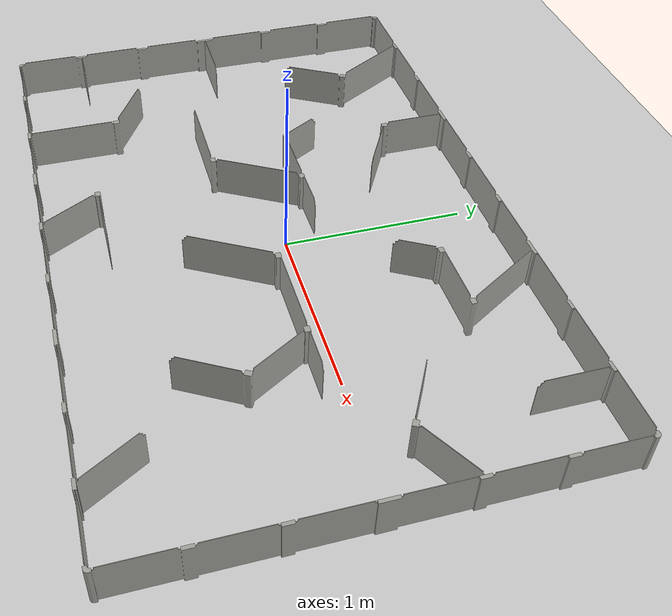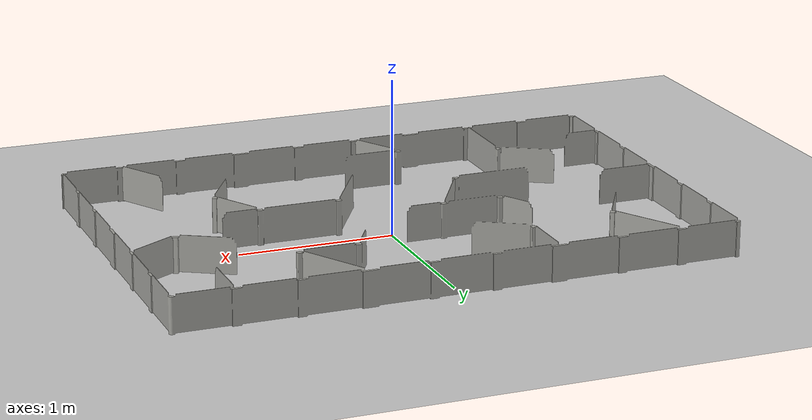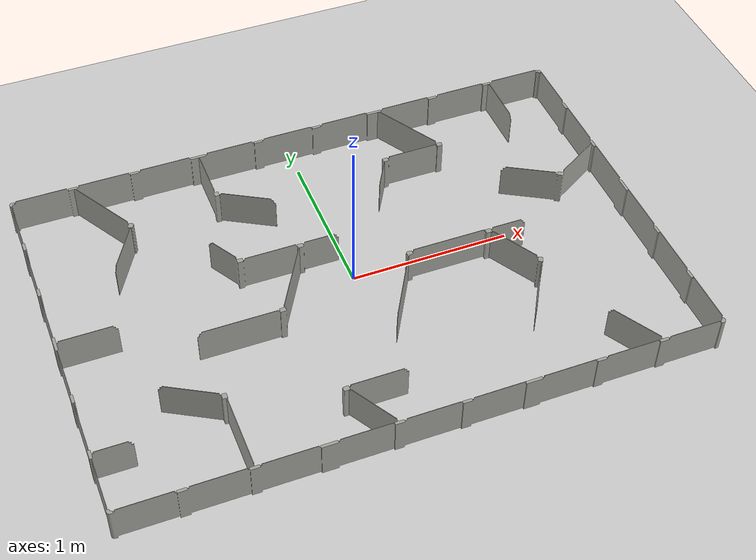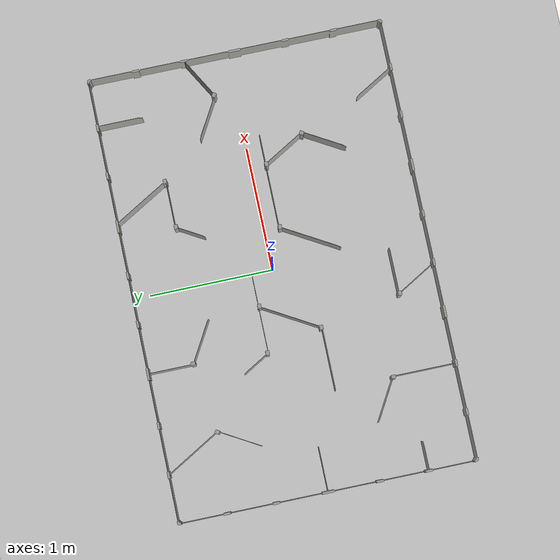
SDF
<?xml version="1.0"?>
<sdf version="1.6">
  <world name="default">
    <plugin
      filename="gz-sim-physics-system"
      name="gz::sim::systems::Physics">
    </plugin>

    <plugin
      filename="gz-sim-user-commands-system"
      name="gz::sim::systems::UserCommands">
    </plugin>

    <plugin
      filename="gz-sim-scene-broadcaster-system"
      name="gz::sim::systems::SceneBroadcaster">
    </plugin>

    <plugin
      filename="gz-sim-sensors-system"
      name="gz::sim::systems::Sensors">
      <render_engine>ogre2</render_engine>
    </plugin>

    <plugin
      filename="gz-sim-imu-system"
      name="gz::sim::systems::Imu">
    </plugin>

    <include>
      <uri>https://fuel.gazebosim.org/1.0/OpenRobotics/models/Ground Plane</uri>
    </include>

    <include>
      <uri>https://fuel.gazebosim.org/1.0/OpenRobotics/models/Sun</uri>
    </include>

    <!--3002 FIELD-->
    <include>
      <uri>model://big-field</uri>
    </include>

    <scene>
      <shadows>false</shadows>
    </scene>

    <gui fullscreen='0'>
      <camera name='user_camera'>
        <pose frame=''>0.319654 -0.235002 9.29441 0 1.5138 0.009599</pose>
        <view_controller>orbit</view_controller>
        <projection_type>perspective</projection_type>
      </camera>
    </gui>

    <physics type="ode">
      <real_time_update_rate>1000.0</real_time_update_rate>
      <max_step_size>0.001</max_step_size>
      <real_time_factor>1</real_time_factor>
      <ode>
        <solver>
          <type>quick</type>
          <iters>150</iters>
          <precon_iters>0</precon_iters>
          <sor>1.400000</sor>
          <use_dynamic_moi_rescaling>1</use_dynamic_moi_rescaling>
        </solver>
        <constraints>
          <cfm>0.00001</cfm>
          <erp>0.2</erp>
          <contact_max_correcting_vel>2000.000000</contact_max_correcting_vel>
          <contact_surface_layer>0.01000</contact_surface_layer>
        </constraints>
      </ode>
    </physics>

  </world>
</sdf>

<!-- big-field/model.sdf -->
<sdf version="1.7">
  <model name="big-field">

    <!-- model position in the world -->
    <pose>0 0 0 0 0 0</pose>

    <!-- locked postiton? -->
    <static>true</static>

    <link name="link">
      <!--pose of link relative to model-->
      <pose>0 0 0 0 0 0</pose>

      <!-- visual model-->
      <visual name="visual">
        <geometry>
          <mesh>
            <uri>model://big-field/meshes/big-field-3002.stl</uri>
          </mesh>
        </geometry>
          <material>
              <ambient>0.639, 0.639, 0.616, 1.0</ambient>
              <diffuse>0.639, 0.639, 0.616, 1.0</diffuse>
              <specular>0.1 0.1 0.1 1.0</specular>
              <emissive>0 0 0 1</emissive>
          </material>
      </visual>

      <!-- collision geometry-->
      <collision name="collision">
        <geometry>
          <mesh>
            <uri>model://big-field/meshes/big-field-3002.stl</uri>
          </mesh>
        </geometry>
      </collision>

      <inertial>
        <mass>1</mass>
        <inertia>
          <ixx>0.0002</ixx>
          <iyy>0.0002</iyy>
          <izz>0.0002</izz>
        </inertia>
      </inertial>

    </link>
  </model>
</sdf>
